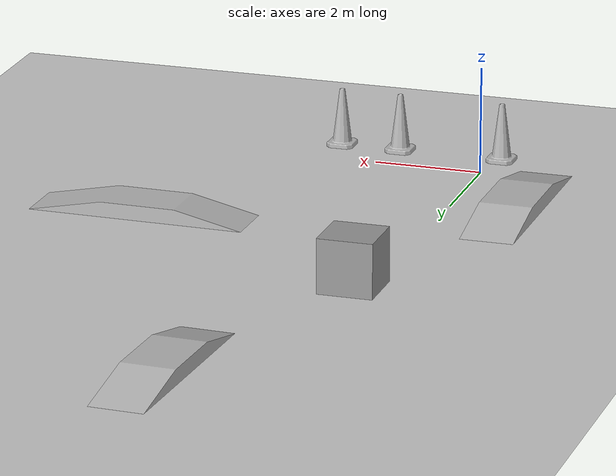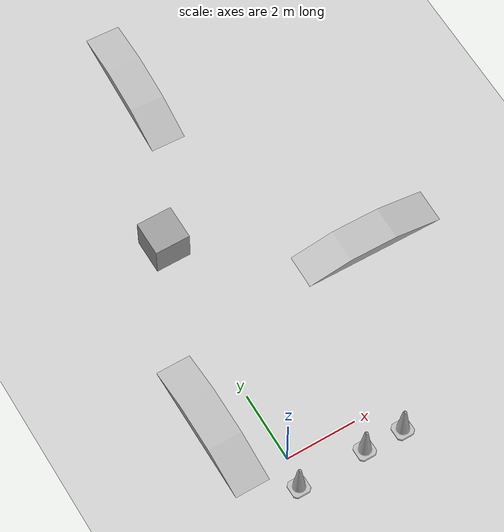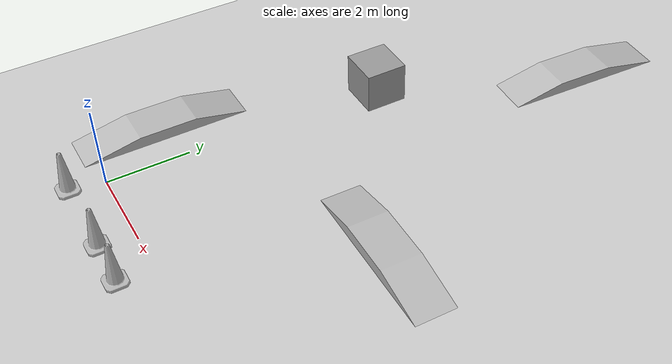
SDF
<sdf version="1.6">
 <world name="default">
  <light name="sun" type="directional">
   <pose>0 0 10 0 -0 0</pose>
   <diffuse>0.8 0.8 0.8 1</diffuse>
   <specular>0.2 0.2 0.2 1</specular>
   <attenuation>
    <range>1000</range>
    <constant>0.9</constant>
    <linear>0.01</linear>
    <quadratic>0.001</quadratic>
   </attenuation>
   <direction>-0.5 0.1 -0.9</direction>
  </light>
  <model name="ground_plane">
   <static>1</static>
   <link name="link">
    <collision name="collision">
     <geometry><plane><normal>0 0 1</normal><size>100 100</size></plane></geometry>
     <surface>
      <contact><collide_bitmask>65535</collide_bitmask></contact>
      <friction><ode><mu>100</mu><mu2>50</mu2></ode></friction>
     </surface>
    </collision>
    <visual name="visual">
     <cast_shadows>0</cast_shadows>
     <geometry><plane><normal>0 0 1</normal><size>100 100</size></plane></geometry>
     <material>
      <script><uri>file://media/materials/scripts/gazebo.material</uri><name>Gazebo/Grey</name></script>
     </material>
    </visual>
   </link>
  </model>
  <gravity>0 0 -9.8</gravity>
  <magnetic_field>6e-06 2.3e-05 -4.2e-05</magnetic_field>
  <atmosphere type="adiabatic"/>
  <physics name="default_physics" default="0" type="ode">
   <max_step_size>0.001</max_step_size>
   <real_time_factor>1</real_time_factor>
   <real_time_update_rate>1000</real_time_update_rate>
  </physics>
  <scene><ambient>0.4 0.4 0.4 1</ambient><background>0.7 0.7 0.7 1</background><shadows>1</shadows></scene>
  <audio><device>default</device></audio>
  <spherical_coordinates>
   <surface_model>EARTH_WGS84</surface_model>
   <latitude_deg>0</latitude_deg>
   <longitude_deg>0</longitude_deg>
   <elevation>0</elevation>
   <heading_deg>0</heading_deg>
  </spherical_coordinates>
  <model name="my_model">
   <pose>0.325741 1.74621 0.023258 0 -0 0</pose>
   <static>1</static>
   <link name="link">
    <inertial>
     <mass>1</mass>
     <inertia><ixx>0.083</ixx><ixy>0</ixy><ixz>0</ixz><iyy>0.083</iyy><iyz>0</iyz><izz>0.083</izz></inertia>
    </inertial>
    <collision name="collision">
     <geometry><mesh><uri>model://ramp/meshes/ramp.dae</uri></mesh></geometry>
    </collision>
    <visual name="visual"><geometry><mesh><uri>model://ramp/meshes/ramp.dae</uri></mesh></geometry></visual>
   </link>
  </model>
  <model name="Construction Cone">
   <link name="link">
    <collision name="collision">
     <geometry>
      <mesh><scale>10 10 10</scale><uri>model://construction_cone/meshes/construction_cone.dae</uri></mesh>
     </geometry>
    </collision>
    <visual name="visual">
     <geometry>
      <mesh><scale>10 10 10</scale><uri>model://construction_cone/meshes/construction_cone.dae</uri></mesh>
     </geometry>
    </visual>
    <inertial>
     <inertia><ixx>1</ixx><ixy>0</ixy><ixz>0</ixz><iyy>1</iyy><iyz>0</iyz><izz>1</izz></inertia>
     <mass>1</mass>
    </inertial>
   </link>
   <pose>2.91258 -0.826685 -0 0 -1e-06 0</pose>
  </model>
  <model name="Construction Cone_0">
   <link name="link">
    <collision name="collision">
     <geometry>
      <mesh><scale>10 10 10</scale><uri>model://construction_cone/meshes/construction_cone.dae</uri></mesh>
     </geometry>
    </collision>
    <visual name="visual">
     <geometry>
      <mesh><scale>10 10 10</scale><uri>model://construction_cone/meshes/construction_cone.dae</uri></mesh>
     </geometry>
    </visual>
    <inertial>
     <inertia><ixx>1</ixx><ixy>0</ixy><ixz>0</ixz><iyy>1</iyy><iyz>0</iyz><izz>1</izz></inertia>
     <mass>1</mass>
    </inertial>
   </link>
   <pose>-0.16358 -0.817843 -0 0 -0 0</pose>
  </model>
  <model name="Construction Cone_1">
   <link name="link">
    <collision name="collision">
     <geometry>
      <mesh><scale>10 10 10</scale><uri>model://construction_cone/meshes/construction_cone.dae</uri></mesh>
     </geometry>
    </collision>
    <visual name="visual">
     <geometry>
      <mesh><scale>10 10 10</scale><uri>model://construction_cone/meshes/construction_cone.dae</uri></mesh>
     </geometry>
    </visual>
    <inertial>
     <inertia><ixx>1</ixx><ixy>0</ixy><ixz>0</ixz><iyy>1</iyy><iyz>0</iyz><izz>1</izz></inertia>
     <mass>1</mass>
    </inertial>
   </link>
   <pose>1.78505 -0.814613 -0 0 -1e-06 0</pose>
  </model>
  <model name="unit_box">
   <pose>0.323872 6.78586 0.531931 0.000298 -0 0.000111</pose>
   <link name="link">
    <inertial>
     <mass>1</mass>
     <inertia>
      <ixx>0.166667</ixx>
      <ixy>0</ixy>
      <ixz>0</ixz>
      <iyy>0.166667</iyy>
      <iyz>0</iyz>
      <izz>0.166667</izz>
     </inertia>
    </inertial>
    <collision name="collision"><geometry><box><size>1 1 0.999998</size></box></geometry></collision>
    <visual name="visual">
     <geometry><box><size>1 1 0.999998</size></box></geometry>
     <material>
      <script><name>Gazebo/Grey</name><uri>file://media/materials/scripts/gazebo.material</uri></script>
     </material>
    </visual>
   </link>
  </model>
  <model name="my_model_clone_0">
   <pose>5.03172 5.77632 0.100182 0 -0 1.55525</pose>
   <static>1</static>
   <link name="link">
    <inertial>
     <mass>1</mass>
     <inertia><ixx>0.083</ixx><ixy>0</ixy><ixz>0</ixz><iyy>0.083</iyy><iyz>0</iyz><izz>0.083</izz></inertia>
    </inertial>
    <collision name="collision">
     <geometry><mesh><uri>model://ramp/meshes/ramp.dae</uri></mesh></geometry>
    </collision>
    <visual name="visual"><geometry><mesh><uri>model://ramp/meshes/ramp.dae</uri></mesh></geometry></visual>
   </link>
  </model>
  <model name="my_model_clone">
   <pose>0.6072 11.5771 0.023258 0 -0 3.09478</pose>
   <static>1</static>
   <link name="link">
    <inertial>
     <mass>1</mass>
     <inertia><ixx>0.083</ixx><ixy>0</ixy><ixz>0</ixz><iyy>0.083</iyy><iyz>0</iyz><izz>0.083</izz></inertia>
    </inertial>
    <collision name="collision">
     <geometry><mesh><uri>model://ramp/meshes/ramp.dae</uri></mesh></geometry>
    </collision>
    <visual name="visual"><geometry><mesh><uri>model://ramp/meshes/ramp.dae</uri></mesh></geometry></visual>
   </link>
  </model>
 </world>
</sdf>
